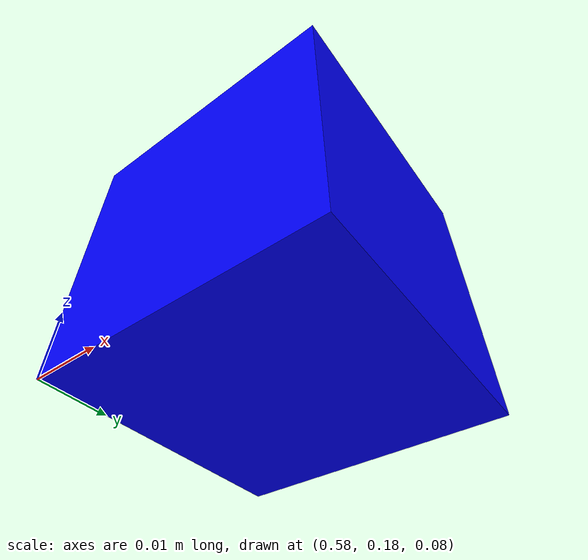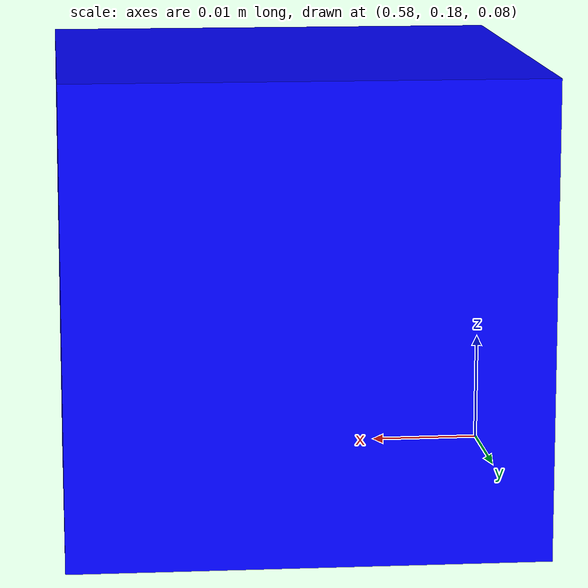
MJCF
<mujoco>
    <worldbody>
        <body name="blue_block" pos="0.6 0.2 0.1">
            <joint name="blue_block:joint" type="free" damping="0.1"/>
            <geom name="blue_block" size="0.02 0.02 0.02" rgba="0 0 1 1" type="box" conaffinity="0" contype="0" group="1"/>
            <geom name="blue_block_collision" size="0.02 0.02 0.02" rgba="0 0 1 1" type="box" conaffinity="1" condim="4" contype="1" group="4" mass="0.01"/>
            <site name="blue_block" pos="0 0 0" size="0.02 0.02 0.02" rgba="0 0 1 0.5" type="sphere" />
        </body>
    </worldbody>
</mujoco>
